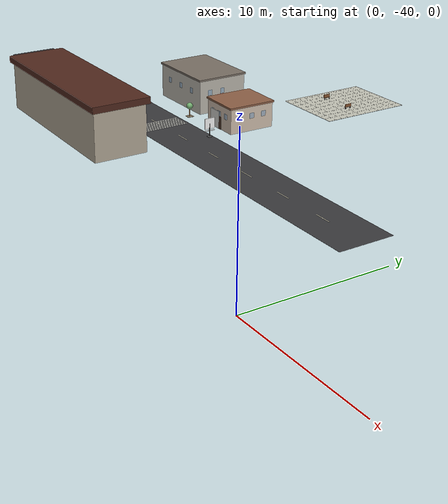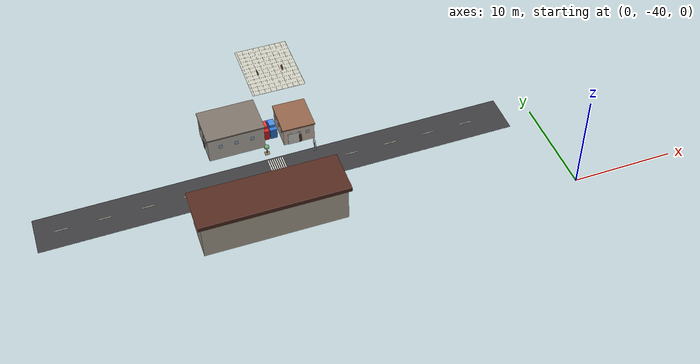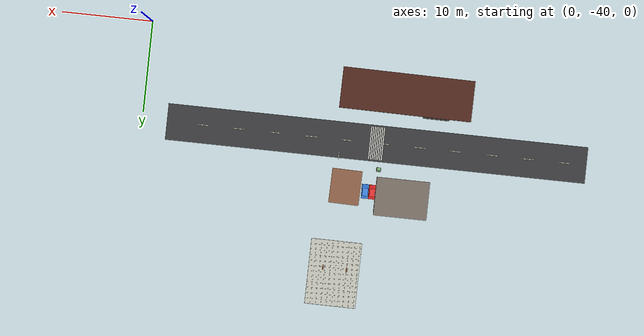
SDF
<sdf version="1.10">
 <world name="city">
  <model name="central_plaza">
   <static>true</static>
   <pose>-22.6455993652344 -14.5340393066406 0 0 0 1.56522998544021</pose>
   <link name="link">
    <collision name="plaza_col">
     <pose>0 0 0.008 0 0 0</pose>
     <geometry><box><size>7.2 5.6 0.016</size></box></geometry>
    </collision>
    <visual name="plaza_vis">
     <pose>0 0 0.008 0 0 0</pose>
     <geometry><box><size>7.2 5.6 0.016</size></box></geometry>
     <material>
      <ambient>0.779999971 0.779999971 0.730000019 1</ambient>
      <diffuse>0.779999971 0.779999971 0.730000019 1</diffuse>
      <specular>0.0799999982 0.0799999982 0.0799999982 1</specular>
     </material>
    </visual>
    <visual name="gx0">
     <pose>-3.6 0 0.0164 0 0 0</pose>
     <geometry><box><size>0.016 5.6 0.002</size></box></geometry>
     <material>
      <ambient>0.639999986 0.639999986 0.600000024 1</ambient>
      <diffuse>0.639999986 0.639999986 0.600000024 1</diffuse>
      <specular>0.0799999982 0.0799999982 0.0799999982 1</specular>
     </material>
    </visual>
    <visual name="gx1">
     <pose>-3 0 0.0164 0 0 0</pose>
     <geometry><box><size>0.016 5.6 0.002</size></box></geometry>
     <material>
      <ambient>0.639999986 0.639999986 0.600000024 1</ambient>
      <diffuse>0.639999986 0.639999986 0.600000024 1</diffuse>
      <specular>0.0799999982 0.0799999982 0.0799999982 1</specular>
     </material>
    </visual>
    <visual name="gx2">
     <pose>-2.4 0 0.0164 0 0 0</pose>
     <geometry><box><size>0.016 5.6 0.002</size></box></geometry>
     <material>
      <ambient>0.639999986 0.639999986 0.600000024 1</ambient>
      <diffuse>0.639999986 0.639999986 0.600000024 1</diffuse>
      <specular>0.0799999982 0.0799999982 0.0799999982 1</specular>
     </material>
    </visual>
    <visual name="gx3">
     <pose>-1.8 0 0.0164 0 0 0</pose>
     <geometry><box><size>0.016 5.6 0.002</size></box></geometry>
     <material>
      <ambient>0.639999986 0.639999986 0.600000024 1</ambient>
      <diffuse>0.639999986 0.639999986 0.600000024 1</diffuse>
      <specular>0.0799999982 0.0799999982 0.0799999982 1</specular>
     </material>
    </visual>
    <visual name="gx4">
     <pose>-1.2 0 0.0164 0 0 0</pose>
     <geometry><box><size>0.016 5.6 0.002</size></box></geometry>
     <material>
      <ambient>0.639999986 0.639999986 0.600000024 1</ambient>
      <diffuse>0.639999986 0.639999986 0.600000024 1</diffuse>
      <specular>0.0799999982 0.0799999982 0.0799999982 1</specular>
     </material>
    </visual>
    <visual name="gx5">
     <pose>-0.6 0 0.0164 0 0 0</pose>
     <geometry><box><size>0.016 5.6 0.002</size></box></geometry>
     <material>
      <ambient>0.639999986 0.639999986 0.600000024 1</ambient>
      <diffuse>0.639999986 0.639999986 0.600000024 1</diffuse>
      <specular>0.0799999982 0.0799999982 0.0799999982 1</specular>
     </material>
    </visual>
    <visual name="gx6">
     <pose>0 0 0.0164 0 0 0</pose>
     <geometry><box><size>0.016 5.6 0.002</size></box></geometry>
     <material>
      <ambient>0.639999986 0.639999986 0.600000024 1</ambient>
      <diffuse>0.639999986 0.639999986 0.600000024 1</diffuse>
      <specular>0.0799999982 0.0799999982 0.0799999982 1</specular>
     </material>
    </visual>
    <visual name="gx7">
     <pose>0.6 0 0.0164 0 0 0</pose>
     <geometry><box><size>0.016 5.6 0.002</size></box></geometry>
     <material>
      <ambient>0.639999986 0.639999986 0.600000024 1</ambient>
      <diffuse>0.639999986 0.639999986 0.600000024 1</diffuse>
      <specular>0.0799999982 0.0799999982 0.0799999982 1</specular>
     </material>
    </visual>
    <visual name="gx8">
     <pose>1.2 0 0.0164 0 0 0</pose>
     <geometry><box><size>0.016 5.6 0.002</size></box></geometry>
     <material>
      <ambient>0.639999986 0.639999986 0.600000024 1</ambient>
      <diffuse>0.639999986 0.639999986 0.600000024 1</diffuse>
      <specular>0.0799999982 0.0799999982 0.0799999982 1</specular>
     </material>
    </visual>
    <visual name="gx9">
     <pose>1.8 0 0.0164 0 0 0</pose>
     <geometry><box><size>0.016 5.6 0.002</size></box></geometry>
     <material>
      <ambient>0.639999986 0.639999986 0.600000024 1</ambient>
      <diffuse>0.639999986 0.639999986 0.600000024 1</diffuse>
      <specular>0.0799999982 0.0799999982 0.0799999982 1</specular>
     </material>
    </visual>
    <visual name="gx10">
     <pose>2.4 0 0.0164 0 0 0</pose>
     <geometry><box><size>0.016 5.6 0.002</size></box></geometry>
     <material>
      <ambient>0.639999986 0.639999986 0.600000024 1</ambient>
      <diffuse>0.639999986 0.639999986 0.600000024 1</diffuse>
      <specular>0.0799999982 0.0799999982 0.0799999982 1</specular>
     </material>
    </visual>
    <visual name="gx11">
     <pose>3 0 0.0164 0 0 0</pose>
     <geometry><box><size>0.016 5.6 0.002</size></box></geometry>
     <material>
      <ambient>0.639999986 0.639999986 0.600000024 1</ambient>
      <diffuse>0.639999986 0.639999986 0.600000024 1</diffuse>
      <specular>0.0799999982 0.0799999982 0.0799999982 1</specular>
     </material>
    </visual>
    <visual name="gx12">
     <pose>3.6 0 0.0164 0 0 0</pose>
     <geometry><box><size>0.016 5.6 0.002</size></box></geometry>
     <material>
      <ambient>0.639999986 0.639999986 0.600000024 1</ambient>
      <diffuse>0.639999986 0.639999986 0.600000024 1</diffuse>
      <specular>0.0799999982 0.0799999982 0.0799999982 1</specular>
     </material>
    </visual>
    <visual name="gy0">
     <pose>0 -2.8 0.0164 0 0 0</pose>
     <geometry><box><size>7.2 0.016 0.002</size></box></geometry>
     <material>
      <ambient>0.639999986 0.639999986 0.600000024 1</ambient>
      <diffuse>0.639999986 0.639999986 0.600000024 1</diffuse>
      <specular>0.0799999982 0.0799999982 0.0799999982 1</specular>
     </material>
    </visual>
    <visual name="gy1">
     <pose>0 -2.2 0.0164 0 0 0</pose>
     <geometry><box><size>7.2 0.016 0.002</size></box></geometry>
     <material>
      <ambient>0.639999986 0.639999986 0.600000024 1</ambient>
      <diffuse>0.639999986 0.639999986 0.600000024 1</diffuse>
      <specular>0.0799999982 0.0799999982 0.0799999982 1</specular>
     </material>
    </visual>
    <visual name="gy2">
     <pose>0 -1.6 0.0164 0 0 0</pose>
     <geometry><box><size>7.2 0.016 0.002</size></box></geometry>
     <material>
      <ambient>0.639999986 0.639999986 0.600000024 1</ambient>
      <diffuse>0.639999986 0.639999986 0.600000024 1</diffuse>
      <specular>0.0799999982 0.0799999982 0.0799999982 1</specular>
     </material>
    </visual>
    <visual name="gy3">
     <pose>0 -1 0.0164 0 0 0</pose>
     <geometry><box><size>7.2 0.016 0.002</size></box></geometry>
     <material>
      <ambient>0.639999986 0.639999986 0.600000024 1</ambient>
      <diffuse>0.639999986 0.639999986 0.600000024 1</diffuse>
      <specular>0.0799999982 0.0799999982 0.0799999982 1</specular>
     </material>
    </visual>
    <visual name="gy4">
     <pose>0 -0.4 0.0164 0 0 0</pose>
     <geometry><box><size>7.2 0.016 0.002</size></box></geometry>
     <material>
      <ambient>0.639999986 0.639999986 0.600000024 1</ambient>
      <diffuse>0.639999986 0.639999986 0.600000024 1</diffuse>
      <specular>0.0799999982 0.0799999982 0.0799999982 1</specular>
     </material>
    </visual>
    <visual name="gy5">
     <pose>0 0.2 0.0164 0 0 0</pose>
     <geometry><box><size>7.2 0.016 0.002</size></box></geometry>
     <material>
      <ambient>0.639999986 0.639999986 0.600000024 1</ambient>
      <diffuse>0.639999986 0.639999986 0.600000024 1</diffuse>
      <specular>0.0799999982 0.0799999982 0.0799999982 1</specular>
     </material>
    </visual>
    <visual name="gy6">
     <pose>0 0.8 0.0164 0 0 0</pose>
     <geometry><box><size>7.2 0.016 0.002</size></box></geometry>
     <material>
      <ambient>0.639999986 0.639999986 0.600000024 1</ambient>
      <diffuse>0.639999986 0.639999986 0.600000024 1</diffuse>
      <specular>0.0799999982 0.0799999982 0.0799999982 1</specular>
     </material>
    </visual>
    <visual name="gy7">
     <pose>0 1.4 0.0164 0 0 0</pose>
     <geometry><box><size>7.2 0.016 0.002</size></box></geometry>
     <material>
      <ambient>0.639999986 0.639999986 0.600000024 1</ambient>
      <diffuse>0.639999986 0.639999986 0.600000024 1</diffuse>
      <specular>0.0799999982 0.0799999982 0.0799999982 1</specular>
     </material>
    </visual>
    <visual name="gy8">
     <pose>0 2 0.0164 0 0 0</pose>
     <geometry><box><size>7.2 0.016 0.002</size></box></geometry>
     <material>
      <ambient>0.639999986 0.639999986 0.600000024 1</ambient>
      <diffuse>0.639999986 0.639999986 0.600000024 1</diffuse>
      <specular>0.0799999982 0.0799999982 0.0799999982 1</specular>
     </material>
    </visual>
    <visual name="gy9">
     <pose>0 2.6 0.0164 0 0 0</pose>
     <geometry><box><size>7.2 0.016 0.002</size></box></geometry>
     <material>
      <ambient>0.639999986 0.639999986 0.600000024 1</ambient>
      <diffuse>0.639999986 0.639999986 0.600000024 1</diffuse>
      <specular>0.0799999982 0.0799999982 0.0799999982 1</specular>
     </material>
    </visual>
    <inertial>
     <mass>1</mass>
     <inertia><ixx>1</ixx><ixy>0</ixy><ixz>0</ixz><iyy>1</iyy><iyz>0</iyz><izz>1</izz></inertia>
    </inertial>
   </link>
  </model>
  <model name="house_4">
   <static>true</static>
   <pose>-22.9435424804688 -24.16484375 0 0 0 1.55046998478531</pose>
   <link name="link">
    <collision name="body_col">
     <pose>0 0 0.94 0 0 0</pose>
     <geometry><box><size>3.6 3.12 1.88</size></box></geometry>
    </collision>
    <visual name="body_vis">
     <pose>0 0 0.94 0 0 0</pose>
     <geometry><box><size>3.6 3.12 1.88</size></box></geometry>
     <material>
      <ambient>0.839999974 0.769999981 0.699999988 1</ambient>
      <diffuse>0.839999974 0.769999981 0.699999988 1</diffuse>
      <specular>0.0799999982 0.0799999982 0.0799999982 1</specular>
     </material>
    </visual>
    <collision name="roof_col">
     <pose>0 0 1.95 0 0 0</pose>
     <geometry><box><size>3.76 3.28 0.14</size></box></geometry>
    </collision>
    <visual name="roof_vis">
     <pose>0 0 1.95 0 0 0</pose>
     <geometry><box><size>3.76 3.28 0.14</size></box></geometry>
     <material>
      <ambient>0.560000002 0.379999995 0.280000001 1</ambient>
      <diffuse>0.560000002 0.379999995 0.280000001 1</diffuse>
      <specular>0.0799999982 0.0799999982 0.0799999982 1</specular>
     </material>
    </visual>
    <visual name="door_vis">
     <pose>-1.816 0 0.48 0 0 0</pose>
     <geometry><box><size>0.04 0.52 0.96</size></box></geometry>
     <material>
      <ambient>0.319999993 0.219999999 0.159999996 1</ambient>
      <diffuse>0.319999993 0.219999999 0.159999996 1</diffuse>
      <specular>0.0799999982 0.0799999982 0.0799999982 1</specular>
     </material>
    </visual>
    <visual name="win_west_0">
     <pose>-1.812 -0.8736 1.1656 0 0 0</pose>
     <geometry><box><size>0.032 0.34 0.4</size></box></geometry>
     <material>
      <ambient>0.550000012 0.720000029 0.879999995 0.550000012</ambient>
      <diffuse>0.550000012 0.720000029 0.879999995 0.550000012</diffuse>
      <specular>0.0799999982 0.0799999982 0.0799999982 1</specular>
      <transparency>0.35</transparency>
     </material>
    </visual>
    <visual name="win_west_1">
     <pose>-1.812 0 1.1656 0 0 0</pose>
     <geometry><box><size>0.032 0.34 0.4</size></box></geometry>
     <material>
      <ambient>0.550000012 0.720000029 0.879999995 0.550000012</ambient>
      <diffuse>0.550000012 0.720000029 0.879999995 0.550000012</diffuse>
      <specular>0.0799999982 0.0799999982 0.0799999982 1</specular>
      <transparency>0.35</transparency>
     </material>
    </visual>
    <visual name="win_west_2">
     <pose>-1.812 0.8736 1.1656 0 0 0</pose>
     <geometry><box><size>0.032 0.34 0.4</size></box></geometry>
     <material>
      <ambient>0.550000012 0.720000029 0.879999995 0.550000012</ambient>
      <diffuse>0.550000012 0.720000029 0.879999995 0.550000012</diffuse>
      <specular>0.0799999982 0.0799999982 0.0799999982 1</specular>
      <transparency>0.35</transparency>
     </material>
    </visual>
    <visual name="win_south_0">
     <pose>-1.008 -1.572 1.1656 0 0 0</pose>
     <geometry><box><size>0.34 0.032 0.4</size></box></geometry>
     <material>
      <ambient>0.550000012 0.720000029 0.879999995 0.550000012</ambient>
      <diffuse>0.550000012 0.720000029 0.879999995 0.550000012</diffuse>
      <specular>0.0799999982 0.0799999982 0.0799999982 1</specular>
      <transparency>0.35</transparency>
     </material>
    </visual>
    <visual name="win_south_1">
     <pose>0 -1.572 1.1656 0 0 0</pose>
     <geometry><box><size>0.34 0.032 0.4</size></box></geometry>
     <material>
      <ambient>0.550000012 0.720000029 0.879999995 0.550000012</ambient>
      <diffuse>0.550000012 0.720000029 0.879999995 0.550000012</diffuse>
      <specular>0.0799999982 0.0799999982 0.0799999982 1</specular>
      <transparency>0.35</transparency>
     </material>
    </visual>
    <visual name="win_south_2">
     <pose>1.008 -1.572 1.1656 0 0 0</pose>
     <geometry><box><size>0.34 0.032 0.4</size></box></geometry>
     <material>
      <ambient>0.550000012 0.720000029 0.879999995 0.550000012</ambient>
      <diffuse>0.550000012 0.720000029 0.879999995 0.550000012</diffuse>
      <specular>0.0799999982 0.0799999982 0.0799999982 1</specular>
      <transparency>0.35</transparency>
     </material>
    </visual>
    <visual name="win_east_0">
     <pose>1.812 -0.8736 1.1656 0 0 0</pose>
     <geometry><box><size>0.032 0.34 0.4</size></box></geometry>
     <material>
      <ambient>0.550000012 0.720000029 0.879999995 0.550000012</ambient>
      <diffuse>0.550000012 0.720000029 0.879999995 0.550000012</diffuse>
      <specular>0.0799999982 0.0799999982 0.0799999982 1</specular>
      <transparency>0.35</transparency>
     </material>
    </visual>
    <visual name="win_east_1">
     <pose>1.812 0 1.1656 0 0 0</pose>
     <geometry><box><size>0.032 0.34 0.4</size></box></geometry>
     <material>
      <ambient>0.550000012 0.720000029 0.879999995 0.550000012</ambient>
      <diffuse>0.550000012 0.720000029 0.879999995 0.550000012</diffuse>
      <specular>0.0799999982 0.0799999982 0.0799999982 1</specular>
      <transparency>0.35</transparency>
     </material>
    </visual>
    <visual name="win_north_0">
     <pose>-1.008 1.572 1.1656 0 0 0</pose>
     <geometry><box><size>0.34 0.032 0.4</size></box></geometry>
     <material>
      <ambient>0.550000012 0.720000029 0.879999995 0.550000012</ambient>
      <diffuse>0.550000012 0.720000029 0.879999995 0.550000012</diffuse>
      <specular>0.0799999982 0.0799999982 0.0799999982 1</specular>
      <transparency>0.35</transparency>
     </material>
    </visual>
    <visual name="win_north_1">
     <pose>0 1.572 1.1656 0 0 0</pose>
     <geometry><box><size>0.34 0.032 0.4</size></box></geometry>
     <material>
      <ambient>0.550000012 0.720000029 0.879999995 0.550000012</ambient>
      <diffuse>0.550000012 0.720000029 0.879999995 0.550000012</diffuse>
      <specular>0.0799999982 0.0799999982 0.0799999982 1</specular>
      <transparency>0.35</transparency>
     </material>
    </visual>
    <visual name="win_north_2">
     <pose>1.008 1.572 1.1656 0 0 0</pose>
     <geometry><box><size>0.34 0.032 0.4</size></box></geometry>
     <material>
      <ambient>0.550000012 0.720000029 0.879999995 0.550000012</ambient>
      <diffuse>0.550000012 0.720000029 0.879999995 0.550000012</diffuse>
      <specular>0.0799999982 0.0799999982 0.0799999982 1</specular>
      <transparency>0.35</transparency>
     </material>
    </visual>
    <visual name="garage">
     <pose>-1.824 0.5616 0.66 0 0 0</pose>
     <geometry><box><size>0.048 1.12 1.32</size></box></geometry>
     <material>
      <ambient>0.860000014 0.860000014 0.839999974 1</ambient>
      <diffuse>0.860000014 0.860000014 0.839999974 1</diffuse>
      <specular>0.0799999982 0.0799999982 0.0799999982 1</specular>
     </material>
    </visual>
    <inertial>
     <mass>1</mass>
     <inertia><ixx>1</ixx><ixy>0</ixy><ixz>0</ixz><iyy>1</iyy><iyz>0</iyz><izz>1</izz></inertia>
    </inertial>
   </link>
  </model>
  <model name="tree_2">
   <static>true</static>
   <pose>-26.4 -26.4 0 0 0 0</pose>
   <link name="link">
    <collision name="soil_col">
     <pose>0 0 0.012 0 0 0</pose>
     <geometry><box><size>0.48 0.48 0.024</size></box></geometry>
    </collision>
    <visual name="soil_vis">
     <pose>0 0 0.012 0 0 0</pose>
     <geometry><box><size>0.48 0.48 0.024</size></box></geometry>
     <material>
      <ambient>0.5 0.439999998 0.349999994 1</ambient>
      <diffuse>0.5 0.439999998 0.349999994 1</diffuse>
      <specular>0.0799999982 0.0799999982 0.0799999982 1</specular>
     </material>
    </visual>
    <collision name="trunk_col">
     <pose>0 0 0.36 0 0 0</pose>
     <geometry><cylinder><radius>0.04</radius><length>0.72</length></cylinder></geometry>
    </collision>
    <visual name="trunk_vis">
     <pose>0 0 0.36 0 0 0</pose>
     <geometry><cylinder><radius>0.04</radius><length>0.72</length></cylinder></geometry>
     <material>
      <ambient>0.449999988 0.310000002 0.180000007 1</ambient>
      <diffuse>0.449999988 0.310000002 0.180000007 1</diffuse>
      <specular>0.0799999982 0.0799999982 0.0799999982 1</specular>
     </material>
    </visual>
    <visual name="crown_vis">
     <pose>0 0 0.84 0 0 0</pose>
     <geometry><sphere><radius>0.248</radius></sphere></geometry>
     <material>
      <ambient>0.449999988 0.680000007 0.439999998 1</ambient>
      <diffuse>0.449999988 0.680000007 0.439999998 1</diffuse>
      <specular>0.0799999982 0.0799999982 0.0799999982 1</specular>
     </material>
    </visual>
    <inertial>
     <mass>1</mass>
     <inertia><ixx>1</ixx><ixy>0</ixy><ixz>0</ixz><iyy>1</iyy><iyz>0</iyz><izz>1</izz></inertia>
    </inertial>
   </link>
  </model>
  <model name="bench_1">
   <static>true</static>
   <pose>-24.0544708251953 -15.0435668945313 0 0 0 -1.57385998235563</pose>
   <link name="link">
    <visual name="seat">
     <pose>0 0 0.18 0 0 0</pose>
     <geometry><box><size>0.56 0.14 0.032</size></box></geometry>
     <material>
      <ambient>0.550000012 0.349999994 0.200000003 1</ambient>
      <diffuse>0.550000012 0.349999994 0.200000003 1</diffuse>
      <specular>0.0799999982 0.0799999982 0.0799999982 1</specular>
     </material>
    </visual>
    <visual name="back">
     <pose>0 -0.048 0.3 0 0 0</pose>
     <geometry><box><size>0.56 0.032 0.22</size></box></geometry>
     <material>
      <ambient>0.550000012 0.349999994 0.200000003 1</ambient>
      <diffuse>0.550000012 0.349999994 0.200000003 1</diffuse>
      <specular>0.0799999982 0.0799999982 0.0799999982 1</specular>
     </material>
    </visual>
    <visual name="leg1">
     <pose>-0.22 0 0.088 0 0 0</pose>
     <geometry><box><size>0.032 0.112 0.176</size></box></geometry>
     <material>
      <ambient>0.180000007 0.180000007 0.180000007 1</ambient>
      <diffuse>0.180000007 0.180000007 0.180000007 1</diffuse>
      <specular>0.0799999982 0.0799999982 0.0799999982 1</specular>
     </material>
    </visual>
    <visual name="leg2">
     <pose>0.22 0 0.088 0 0 0</pose>
     <geometry><box><size>0.032 0.112 0.176</size></box></geometry>
     <material>
      <ambient>0.180000007 0.180000007 0.180000007 1</ambient>
      <diffuse>0.180000007 0.180000007 0.180000007 1</diffuse>
      <specular>0.0799999982 0.0799999982 0.0799999982 1</specular>
     </material>
    </visual>
    <inertial>
     <mass>1</mass>
     <inertia><ixx>1</ixx><ixy>0</ixy><ixz>0</ixz><iyy>1</iyy><iyz>0</iyz><izz>1</izz></inertia>
    </inertial>
   </link>
  </model>
  <model name="bench_2">
   <static>true</static>
   <pose>-21.4449645996094 -15.087646484375 0 0 0 1.57080003571763</pose>
   <link name="link">
    <visual name="seat">
     <pose>0 0 0.18 0 0 0</pose>
     <geometry><box><size>0.56 0.14 0.032</size></box></geometry>
     <material>
      <ambient>0.550000012 0.349999994 0.200000003 1</ambient>
      <diffuse>0.550000012 0.349999994 0.200000003 1</diffuse>
      <specular>0.0799999982 0.0799999982 0.0799999982 1</specular>
     </material>
    </visual>
    <visual name="back">
     <pose>0 -0.048 0.3 0 0 0</pose>
     <geometry><box><size>0.56 0.032 0.22</size></box></geometry>
     <material>
      <ambient>0.550000012 0.349999994 0.200000003 1</ambient>
      <diffuse>0.550000012 0.349999994 0.200000003 1</diffuse>
      <specular>0.0799999982 0.0799999982 0.0799999982 1</specular>
     </material>
    </visual>
    <visual name="leg1">
     <pose>-0.22 0 0.088 0 0 0</pose>
     <geometry><box><size>0.032 0.112 0.176</size></box></geometry>
     <material>
      <ambient>0.180000007 0.180000007 0.180000007 1</ambient>
      <diffuse>0.180000007 0.180000007 0.180000007 1</diffuse>
      <specular>0.0799999982 0.0799999982 0.0799999982 1</specular>
     </material>
    </visual>
    <visual name="leg2">
     <pose>0.22 0 0.088 0 0 0</pose>
     <geometry><box><size>0.032 0.112 0.176</size></box></geometry>
     <material>
      <ambient>0.180000007 0.180000007 0.180000007 1</ambient>
      <diffuse>0.180000007 0.180000007 0.180000007 1</diffuse>
      <specular>0.0799999982 0.0799999982 0.0799999982 1</specular>
     </material>
    </visual>
    <inertial>
     <mass>1</mass>
     <inertia><ixx>1</ixx><ixy>0</ixy><ixz>0</ixz><iyy>1</iyy><iyz>0</iyz><izz>1</izz></inertia>
    </inertial>
   </link>
  </model>
  <model name="house_4_qr_sign">
   <static>true</static>
   <pose>-21.9045928955078 -27.5053924560547 0 0 0 -1.59809998817345</pose>
   <link name="link">
    <collision name="post_col">
     <pose>0 0 0.5 0 0 0</pose>
     <geometry><box><size>0.056 0.056 1</size></box></geometry>
    </collision>
    <visual name="post_vis">
     <pose>0 0 0.5 0 0 0</pose>
     <geometry><box><size>0.056 0.056 1</size></box></geometry>
     <material>
      <ambient>0.239999995 0.239999995 0.239999995 1</ambient>
      <diffuse>0.239999995 0.239999995 0.239999995 1</diffuse>
      <specular>0.0799999982 0.0799999982 0.0799999982 1</specular>
     </material>
    </visual>
    <collision name="base_col">
     <pose>0 0 0.024 0 0 0</pose>
     <geometry><box><size>0.3 0.3 0.048</size></box></geometry>
    </collision>
    <visual name="base_vis">
     <pose>0 0 0.024 0 0 0</pose>
     <geometry><box><size>0.3 0.3 0.048</size></box></geometry>
     <material>
      <ambient>0.379999995 0.379999995 0.379999995 1</ambient>
      <diffuse>0.379999995 0.379999995 0.379999995 1</diffuse>
      <specular>0.0799999982 0.0799999982 0.0799999982 1</specular>
     </material>
    </visual>
    <visual name="back_vis">
     <pose>0 0 0.48 0 0 0</pose>
     <geometry><box><size>0.86 0.024 0.072</size></box></geometry>
     <material>
      <ambient>0.920000017 0.920000017 0.920000017 1</ambient>
      <diffuse>0.920000017 0.920000017 0.920000017 1</diffuse>
      <specular>0.0500000007 0.0500000007 0.0500000007 1</specular>
     </material>
    </visual>
    <visual name="qr_vis">
     <pose>0 0 1.02 0 0 0</pose>
     <geometry><box><size>0.8 0.04 0.8</size></box></geometry>
     <material>
      <ambient>1 1 1 1</ambient>
      <diffuse>1 1 1 1</diffuse>
      <specular>0.0500000007 0.0500000007 0.0500000007 1</specular>
      <pbr><metal><metalness>0.0</metalness><roughness>1.0</roughness></metal></pbr>
     </material>
    </visual>
    <inertial>
     <mass>1</mass>
     <inertia><ixx>1</ixx><ixy>0</ixy><ixz>0</ixz><iyy>1</iyy><iyz>0</iyz><izz>1</izz></inertia>
    </inertial>
   </link>
  </model>
  <model name="warehouse_east_1">
   <static>true</static>
   <pose>-29.1020486767562 -23.5312824687326 0 0 0 0</pose>
   <link name="link">
    <collision name="body_col">
     <pose>0 0 1.3 0 0 0</pose>
     <geometry><box><size>5.6 4 2.6</size></box></geometry>
    </collision>
    <visual name="body_vis">
     <pose>0 0 1.3 0 0 0</pose>
     <geometry><box><size>5.6 4 2.6</size></box></geometry>
     <material>
      <ambient>0.75999999 0.74000001 0.699999988 1</ambient>
      <diffuse>0.75999999 0.74000001 0.699999988 1</diffuse>
      <specular>0.0799999982 0.0799999982 0.0799999982 1</specular>
     </material>
    </visual>
    <collision name="roof_col">
     <pose>0 0 2.67 0 0 0</pose>
     <geometry><box><size>5.76 4.16 0.14</size></box></geometry>
    </collision>
    <visual name="roof_vis">
     <pose>0 0 2.67 0 0 0</pose>
     <geometry><box><size>5.76 4.16 0.14</size></box></geometry>
     <material>
      <ambient>0.479999989 0.439999998 0.400000006 1</ambient>
      <diffuse>0.479999989 0.439999998 0.400000006 1</diffuse>
      <specular>0.0799999982 0.0799999982 0.0799999982 1</specular>
     </material>
    </visual>
    <visual name="door_vis">
     <pose>-2.816 0 0.48 0 0 0</pose>
     <geometry><box><size>0.04 0.52 0.96</size></box></geometry>
     <material>
      <ambient>0.319999993 0.219999999 0.159999996 1</ambient>
      <diffuse>0.319999993 0.219999999 0.159999996 1</diffuse>
      <specular>0.0799999982 0.0799999982 0.0799999982 1</specular>
     </material>
    </visual>
    <visual name="win_west_0">
     <pose>-2.812 -1.12 1.612 0 0 0</pose>
     <geometry><box><size>0.032 0.34 0.4</size></box></geometry>
     <material>
      <ambient>0.550000012 0.720000029 0.879999995 0.550000012</ambient>
      <diffuse>0.550000012 0.720000029 0.879999995 0.550000012</diffuse>
      <specular>0.0799999982 0.0799999982 0.0799999982 1</specular>
      <transparency>0.35</transparency>
     </material>
    </visual>
    <visual name="win_west_1">
     <pose>-2.812 0 1.612 0 0 0</pose>
     <geometry><box><size>0.032 0.34 0.4</size></box></geometry>
     <material>
      <ambient>0.550000012 0.720000029 0.879999995 0.550000012</ambient>
      <diffuse>0.550000012 0.720000029 0.879999995 0.550000012</diffuse>
      <specular>0.0799999982 0.0799999982 0.0799999982 1</specular>
      <transparency>0.35</transparency>
     </material>
    </visual>
    <visual name="win_west_2">
     <pose>-2.812 1.12 1.612 0 0 0</pose>
     <geometry><box><size>0.032 0.34 0.4</size></box></geometry>
     <material>
      <ambient>0.550000012 0.720000029 0.879999995 0.550000012</ambient>
      <diffuse>0.550000012 0.720000029 0.879999995 0.550000012</diffuse>
      <specular>0.0799999982 0.0799999982 0.0799999982 1</specular>
      <transparency>0.35</transparency>
     </material>
    </visual>
    <visual name="win_south_0">
     <pose>-1.568 -2.012 1.612 0 0 0</pose>
     <geometry><box><size>0.34 0.032 0.4</size></box></geometry>
     <material>
      <ambient>0.550000012 0.720000029 0.879999995 0.550000012</ambient>
      <diffuse>0.550000012 0.720000029 0.879999995 0.550000012</diffuse>
      <specular>0.0799999982 0.0799999982 0.0799999982 1</specular>
      <transparency>0.35</transparency>
     </material>
    </visual>
    <visual name="win_south_1">
     <pose>0 -2.012 1.612 0 0 0</pose>
     <geometry><box><size>0.34 0.032 0.4</size></box></geometry>
     <material>
      <ambient>0.550000012 0.720000029 0.879999995 0.550000012</ambient>
      <diffuse>0.550000012 0.720000029 0.879999995 0.550000012</diffuse>
      <specular>0.0799999982 0.0799999982 0.0799999982 1</specular>
      <transparency>0.35</transparency>
     </material>
    </visual>
    <visual name="win_south_2">
     <pose>1.568 -2.012 1.612 0 0 0</pose>
     <geometry><box><size>0.34 0.032 0.4</size></box></geometry>
     <material>
      <ambient>0.550000012 0.720000029 0.879999995 0.550000012</ambient>
      <diffuse>0.550000012 0.720000029 0.879999995 0.550000012</diffuse>
      <specular>0.0799999982 0.0799999982 0.0799999982 1</specular>
      <transparency>0.35</transparency>
     </material>
    </visual>
    <visual name="win_east_0">
     <pose>2.812 -1.12 1.612 0 0 0</pose>
     <geometry><box><size>0.032 0.34 0.4</size></box></geometry>
     <material>
      <ambient>0.550000012 0.720000029 0.879999995 0.550000012</ambient>
      <diffuse>0.550000012 0.720000029 0.879999995 0.550000012</diffuse>
      <specular>0.0799999982 0.0799999982 0.0799999982 1</specular>
      <transparency>0.35</transparency>
     </material>
    </visual>
    <visual name="win_east_1">
     <pose>2.812 0 1.612 0 0 0</pose>
     <geometry><box><size>0.032 0.34 0.4</size></box></geometry>
     <material>
      <ambient>0.550000012 0.720000029 0.879999995 0.550000012</ambient>
      <diffuse>0.550000012 0.720000029 0.879999995 0.550000012</diffuse>
      <specular>0.0799999982 0.0799999982 0.0799999982 1</specular>
      <transparency>0.35</transparency>
     </material>
    </visual>
    <visual name="win_north_0">
     <pose>-1.568 2.012 1.612 0 0 0</pose>
     <geometry><box><size>0.34 0.032 0.4</size></box></geometry>
     <material>
      <ambient>0.550000012 0.720000029 0.879999995 0.550000012</ambient>
      <diffuse>0.550000012 0.720000029 0.879999995 0.550000012</diffuse>
      <specular>0.0799999982 0.0799999982 0.0799999982 1</specular>
      <transparency>0.35</transparency>
     </material>
    </visual>
    <visual name="win_north_1">
     <pose>0 2.012 1.612 0 0 0</pose>
     <geometry><box><size>0.34 0.032 0.4</size></box></geometry>
     <material>
      <ambient>0.550000012 0.720000029 0.879999995 0.550000012</ambient>
      <diffuse>0.550000012 0.720000029 0.879999995 0.550000012</diffuse>
      <specular>0.0799999982 0.0799999982 0.0799999982 1</specular>
      <transparency>0.35</transparency>
     </material>
    </visual>
    <visual name="win_north_2">
     <pose>1.568 2.012 1.612 0 0 0</pose>
     <geometry><box><size>0.34 0.032 0.4</size></box></geometry>
     <material>
      <ambient>0.550000012 0.720000029 0.879999995 0.550000012</ambient>
      <diffuse>0.550000012 0.720000029 0.879999995 0.550000012</diffuse>
      <specular>0.0799999982 0.0799999982 0.0799999982 1</specular>
      <transparency>0.35</transparency>
     </material>
    </visual>
    <inertial>
     <mass>1</mass>
     <inertia><ixx>1</ixx><ixy>0</ixy><ixz>0</ixz><iyy>1</iyy><iyz>0</iyz><izz>1</izz></inertia>
    </inertial>
   </link>
  </model>
  <model name="gallery_long_residential_block">
   <static>true</static>
   <pose>-28.4608795166016 -34.7549591064453 0 0 0 -0.00839913500363595</pose>
   <link name="body">
    <collision name="collision">
     <pose>0 0 1.8 0 0 0</pose>
     <geometry><box><size>13.6 4 3.6</size></box></geometry>
    </collision>
    <visual name="main">
     <pose>0 0 1.8 0 0 0</pose>
     <geometry><box><size>13.6 4 3.6</size></box></geometry>
     <material>
      <ambient>0.720000029 0.680000007 0.610000014 1</ambient>
      <diffuse>0.720000029 0.680000007 0.610000014 1</diffuse>
      <specular>0.0799999982 0.0799999982 0.0799999982 1</specular>
     </material>
    </visual>
    <visual name="roof">
     <pose>0 0 3.84 0 0 0</pose>
     <geometry><box><size>14.2 4.4 0.48</size></box></geometry>
     <material>
      <ambient>0.319999993 0.159999996 0.119999997 1</ambient>
      <diffuse>0.319999993 0.159999996 0.119999997 1</diffuse>
      <specular>0.0500000007 0.0500000007 0.0500000007 1</specular>
     </material>
    </visual>
    <visual name="canopy">
     <pose>-3.6 2.12 1.16 0 0 0</pose>
     <geometry><box><size>2.8 0.28 0.44</size></box></geometry>
     <material>
      <ambient>0.239999995 0.219999999 0.200000003 1</ambient>
      <diffuse>0.239999995 0.219999999 0.200000003 1</diffuse>
      <specular>0.0299999993 0.0299999993 0.0299999993 1</specular>
     </material>
    </visual>
    <inertial>
     <mass>1</mass>
     <inertia><ixx>1</ixx><ixy>0</ixy><ixz>0</ixz><iyy>1</iyy><iyz>0</iyz><izz>1</izz></inertia>
    </inertial>
   </link>
  </model>
  <model name="car_8_2">
   <static>true</static>
   <pose>-25.9244629251 -23.873397889 0 0 0 1.57080003572</pose>
   <link name="link">
    <collision name="body_col">
     <pose>0 0 0.55125 0 0 0</pose>
     <geometry><box><size>1.56 0.7 1.1025</size></box></geometry>
    </collision>
    <collision name="cab_col">
     <pose>0.06 0 0.866 0 0 0</pose>
     <geometry><box><size>0.84 0.58 1.0395</size></box></geometry>
    </collision>
    <visual name="body_vis">
     <pose>0 0 0.55125 0 0 0</pose>
     <geometry><box><size>1.56 0.7 1.1025</size></box></geometry>
     <material>
      <ambient>0.829999983 0.119999997 0.119999997 1</ambient>
      <diffuse>0.829999983 0.119999997 0.119999997 1</diffuse>
      <specular>0.0799999982 0.0799999982 0.0799999982 1</specular>
     </material>
    </visual>
    <visual name="cab_vis">
     <pose>0.06 0 0.866 0 0 0</pose>
     <geometry><box><size>0.84 0.58 1.0395</size></box></geometry>
     <material>
      <ambient>0.910000026 0.200000003 0.200000003 1</ambient>
      <diffuse>0.910000026 0.200000003 0.200000003 1</diffuse>
      <specular>0.0799999982 0.0799999982 0.0799999982 1</specular>
     </material>
    </visual>
    <visual name="glass_vis">
     <pose>0.08 0 0.854 0 0 0</pose>
     <geometry><box><size>0.76 0.528 0.8505</size></box></geometry>
     <material>
      <ambient>0.550000012 0.720000029 0.879999995 0.550000012</ambient>
      <diffuse>0.550000012 0.720000029 0.879999995 0.550000012</diffuse>
      <specular>0.0799999982 0.0799999982 0.0799999982 1</specular>
      <transparency>0.35</transparency>
     </material>
    </visual>
    <visual name="wheel_-1.15_-0.82">
     <pose>-0.46 -0.328 0.11 1.5708 0 0</pose>
     <geometry><cylinder><radius>0.112</radius><length>0.072</length></cylinder></geometry>
     <material>
      <ambient>0.0799999982 0.0799999982 0.0799999982 1</ambient>
      <diffuse>0.0799999982 0.0799999982 0.0799999982 1</diffuse>
      <specular>0.0799999982 0.0799999982 0.0799999982 1</specular>
     </material>
    </visual>
    <visual name="wheel_-1.15_0.82">
     <pose>-0.46 0.328 0.11 1.5708 0 0</pose>
     <geometry><cylinder><radius>0.112</radius><length>0.072</length></cylinder></geometry>
     <material>
      <ambient>0.0799999982 0.0799999982 0.0799999982 1</ambient>
      <diffuse>0.0799999982 0.0799999982 0.0799999982 1</diffuse>
      <specular>0.0799999982 0.0799999982 0.0799999982 1</specular>
     </material>
    </visual>
    <visual name="wheel_1.15_-0.82">
     <pose>0.46 -0.328 0.11 1.5708 0 0</pose>
     <geometry><cylinder><radius>0.112</radius><length>0.072</length></cylinder></geometry>
     <material>
      <ambient>0.0799999982 0.0799999982 0.0799999982 1</ambient>
      <diffuse>0.0799999982 0.0799999982 0.0799999982 1</diffuse>
      <specular>0.0799999982 0.0799999982 0.0799999982 1</specular>
     </material>
    </visual>
    <visual name="wheel_1.15_0.82">
     <pose>0.46 0.328 0.11 1.5708 0 0</pose>
     <geometry><cylinder><radius>0.112</radius><length>0.072</length></cylinder></geometry>
     <material>
      <ambient>0.0799999982 0.0799999982 0.0799999982 1</ambient>
      <diffuse>0.0799999982 0.0799999982 0.0799999982 1</diffuse>
      <specular>0.0799999982 0.0799999982 0.0799999982 1</specular>
     </material>
    </visual>
    <inertial>
     <mass>1</mass>
     <inertia><ixx>1</ixx><ixy>0</ixy><ixz>0</ixz><iyy>1</iyy><iyz>0</iyz><izz>1</izz></inertia>
    </inertial>
   </link>
  </model>
  <model name="car_9_5">
   <static>true</static>
   <pose>-25.1508879912 -23.876173973 0 0 0 1.57080003572</pose>
   <link name="link">
    <collision name="body_col">
     <pose>0 0 0.55125 0 0 0</pose>
     <geometry><box><size>1.56 0.7 1.1025</size></box></geometry>
    </collision>
    <collision name="cab_col">
     <pose>0.06 0 0.866 0 0 0</pose>
     <geometry><box><size>0.84 0.58 1.0395</size></box></geometry>
    </collision>
    <visual name="body_vis">
     <pose>0 0 0.55125 0 0 0</pose>
     <geometry><box><size>1.56 0.7 1.1025</size></box></geometry>
     <material>
      <ambient>0.180000007 0.449999988 0.819999993 1</ambient>
      <diffuse>0.180000007 0.449999988 0.819999993 1</diffuse>
      <specular>0.0799999982 0.0799999982 0.0799999982 1</specular>
     </material>
    </visual>
    <visual name="cab_vis">
     <pose>0.06 0 0.866 0 0 0</pose>
     <geometry><box><size>0.84 0.58 1.0395</size></box></geometry>
     <material>
      <ambient>0.25999999 0.529999971 0.899999976 1</ambient>
      <diffuse>0.25999999 0.529999971 0.899999976 1</diffuse>
      <specular>0.0799999982 0.0799999982 0.0799999982 1</specular>
     </material>
    </visual>
    <visual name="glass_vis">
     <pose>0.08 0 0.854 0 0 0</pose>
     <geometry><box><size>0.76 0.528 0.8505</size></box></geometry>
     <material>
      <ambient>0.550000012 0.720000029 0.879999995 0.550000012</ambient>
      <diffuse>0.550000012 0.720000029 0.879999995 0.550000012</diffuse>
      <specular>0.0799999982 0.0799999982 0.0799999982 1</specular>
      <transparency>0.35</transparency>
     </material>
    </visual>
    <visual name="wheel_-1.15_-0.82">
     <pose>-0.46 -0.328 0.11 1.5708 0 0</pose>
     <geometry><cylinder><radius>0.112</radius><length>0.072</length></cylinder></geometry>
     <material>
      <ambient>0.0799999982 0.0799999982 0.0799999982 1</ambient>
      <diffuse>0.0799999982 0.0799999982 0.0799999982 1</diffuse>
      <specular>0.0799999982 0.0799999982 0.0799999982 1</specular>
     </material>
    </visual>
    <visual name="wheel_-1.15_0.82">
     <pose>-0.46 0.328 0.11 1.5708 0 0</pose>
     <geometry><cylinder><radius>0.112</radius><length>0.072</length></cylinder></geometry>
     <material>
      <ambient>0.0799999982 0.0799999982 0.0799999982 1</ambient>
      <diffuse>0.0799999982 0.0799999982 0.0799999982 1</diffuse>
      <specular>0.0799999982 0.0799999982 0.0799999982 1</specular>
     </material>
    </visual>
    <visual name="wheel_1.15_-0.82">
     <pose>0.46 -0.328 0.11 1.5708 0 0</pose>
     <geometry><cylinder><radius>0.112</radius><length>0.072</length></cylinder></geometry>
     <material>
      <ambient>0.0799999982 0.0799999982 0.0799999982 1</ambient>
      <diffuse>0.0799999982 0.0799999982 0.0799999982 1</diffuse>
      <specular>0.0799999982 0.0799999982 0.0799999982 1</specular>
     </material>
    </visual>
    <visual name="wheel_1.15_0.82">
     <pose>0.46 0.328 0.11 1.5708 0 0</pose>
     <geometry><cylinder><radius>0.112</radius><length>0.072</length></cylinder></geometry>
     <material>
      <ambient>0.0799999982 0.0799999982 0.0799999982 1</ambient>
      <diffuse>0.0799999982 0.0799999982 0.0799999982 1</diffuse>
      <specular>0.0799999982 0.0799999982 0.0799999982 1</specular>
     </material>
    </visual>
    <inertial>
     <mass>1</mass>
     <inertia><ixx>1</ixx><ixy>0</ixy><ixz>0</ixz><iyy>1</iyy><iyz>0</iyz><izz>1</izz></inertia>
    </inertial>
   </link>
  </model>
  <model name="road_central_eastwest_1_1">
   <static>true</static>
   <pose>-25.9029195539458 -29.2348898428423 0 0 0 0</pose>
   <link name="link">
    <collision name="road_col">
     <pose>0 0 0.004 0 0 0</pose>
     <geometry><box><size>46.4 4 0.008</size></box></geometry>
    </collision>
    <visual name="road_vis">
     <pose>0 0 0.004 0 0 0</pose>
     <geometry><box><size>46.4 4 0.008</size></box></geometry>
     <material>
      <ambient>0.230000004 0.230000004 0.239999995 1</ambient>
      <diffuse>0.230000004 0.230000004 0.239999995 1</diffuse>
      <specular>0.0799999982 0.0799999982 0.0799999982 1</specular>
     </material>
    </visual>
    <visual name="dash0_vis">
     <pose>-20.8 0 0.0088 0 0 0</pose>
     <geometry><box><size>1.2 0.072 0.004</size></box></geometry>
     <material>
      <ambient>0.959999979 0.939999998 0.829999983 1</ambient>
      <diffuse>0.959999979 0.939999998 0.829999983 1</diffuse>
      <specular>0.0799999982 0.0799999982 0.0799999982 1</specular>
     </material>
    </visual>
    <visual name="dash1_vis">
     <pose>-16.8 0 0.0088 0 0 0</pose>
     <geometry><box><size>1.2 0.072 0.004</size></box></geometry>
     <material>
      <ambient>0.959999979 0.939999998 0.829999983 1</ambient>
      <diffuse>0.959999979 0.939999998 0.829999983 1</diffuse>
      <specular>0.0799999982 0.0799999982 0.0799999982 1</specular>
     </material>
    </visual>
    <visual name="dash2_vis">
     <pose>-12.8 0 0.0088 0 0 0</pose>
     <geometry><box><size>1.2 0.072 0.004</size></box></geometry>
     <material>
      <ambient>0.959999979 0.939999998 0.829999983 1</ambient>
      <diffuse>0.959999979 0.939999998 0.829999983 1</diffuse>
      <specular>0.0799999982 0.0799999982 0.0799999982 1</specular>
     </material>
    </visual>
    <visual name="dash3_vis">
     <pose>-8.8 0 0.0088 0 0 0</pose>
     <geometry><box><size>1.2 0.072 0.004</size></box></geometry>
     <material>
      <ambient>0.959999979 0.939999998 0.829999983 1</ambient>
      <diffuse>0.959999979 0.939999998 0.829999983 1</diffuse>
      <specular>0.0799999982 0.0799999982 0.0799999982 1</specular>
     </material>
    </visual>
    <visual name="dash4_vis">
     <pose>-4.8 0 0.0088 0 0 0</pose>
     <geometry><box><size>1.2 0.072 0.004</size></box></geometry>
     <material>
      <ambient>0.959999979 0.939999998 0.829999983 1</ambient>
      <diffuse>0.959999979 0.939999998 0.829999983 1</diffuse>
      <specular>0.0799999982 0.0799999982 0.0799999982 1</specular>
     </material>
    </visual>
    <visual name="dash5_vis">
     <pose>-0.8 0 0.0088 0 0 0</pose>
     <geometry><box><size>1.2 0.072 0.004</size></box></geometry>
     <material>
      <ambient>0.959999979 0.939999998 0.829999983 1</ambient>
      <diffuse>0.959999979 0.939999998 0.829999983 1</diffuse>
      <specular>0.0799999982 0.0799999982 0.0799999982 1</specular>
     </material>
    </visual>
    <visual name="dash6_vis">
     <pose>3.2 0 0.0088 0 0 0</pose>
     <geometry><box><size>1.2 0.072 0.004</size></box></geometry>
     <material>
      <ambient>0.959999979 0.939999998 0.829999983 1</ambient>
      <diffuse>0.959999979 0.939999998 0.829999983 1</diffuse>
      <specular>0.0799999982 0.0799999982 0.0799999982 1</specular>
     </material>
    </visual>
    <visual name="dash7_vis">
     <pose>7.2 0 0.0088 0 0 0</pose>
     <geometry><box><size>1.2 0.072 0.004</size></box></geometry>
     <material>
      <ambient>0.959999979 0.939999998 0.829999983 1</ambient>
      <diffuse>0.959999979 0.939999998 0.829999983 1</diffuse>
      <specular>0.0799999982 0.0799999982 0.0799999982 1</specular>
     </material>
    </visual>
    <visual name="dash8_vis">
     <pose>11.2 0 0.0088 0 0 0</pose>
     <geometry><box><size>1.2 0.072 0.004</size></box></geometry>
     <material>
      <ambient>0.959999979 0.939999998 0.829999983 1</ambient>
      <diffuse>0.959999979 0.939999998 0.829999983 1</diffuse>
      <specular>0.0799999982 0.0799999982 0.0799999982 1</specular>
     </material>
    </visual>
    <visual name="dash9_vis">
     <pose>15.2 0 0.0088 0 0 0</pose>
     <geometry><box><size>1.2 0.072 0.004</size></box></geometry>
     <material>
      <ambient>0.959999979 0.939999998 0.829999983 1</ambient>
      <diffuse>0.959999979 0.939999998 0.829999983 1</diffuse>
      <specular>0.0799999982 0.0799999982 0.0799999982 1</specular>
     </material>
    </visual>
    <visual name="dash10_vis">
     <pose>19.2 0 0.0088 0 0 0</pose>
     <geometry><box><size>1.2 0.072 0.004</size></box></geometry>
     <material>
      <ambient>0.959999979 0.939999998 0.829999983 1</ambient>
      <diffuse>0.959999979 0.939999998 0.829999983 1</diffuse>
      <specular>0.0799999982 0.0799999982 0.0799999982 1</specular>
     </material>
    </visual>
    <visual name="cw0_vis">
     <pose>-0.7 0 0.0088 0 0 0</pose>
     <geometry><box><size>0.112 3.64 0.0048</size></box></geometry>
     <material>
      <ambient>0.959999979 0.959999979 0.920000017 1</ambient>
      <diffuse>0.959999979 0.959999979 0.920000017 1</diffuse>
      <specular>0.0799999982 0.0799999982 0.0799999982 1</specular>
     </material>
    </visual>
    <visual name="cw1_vis">
     <pose>-0.5 0 0.0088 0 0 0</pose>
     <geometry><box><size>0.112 3.64 0.0048</size></box></geometry>
     <material>
      <ambient>0.959999979 0.959999979 0.920000017 1</ambient>
      <diffuse>0.959999979 0.959999979 0.920000017 1</diffuse>
      <specular>0.0799999982 0.0799999982 0.0799999982 1</specular>
     </material>
    </visual>
    <visual name="cw2_vis">
     <pose>-0.3 0 0.0088 0 0 0</pose>
     <geometry><box><size>0.112 3.64 0.0048</size></box></geometry>
     <material>
      <ambient>0.959999979 0.959999979 0.920000017 1</ambient>
      <diffuse>0.959999979 0.959999979 0.920000017 1</diffuse>
      <specular>0.0799999982 0.0799999982 0.0799999982 1</specular>
     </material>
    </visual>
    <visual name="cw3_vis">
     <pose>-0.1 0 0.0088 0 0 0</pose>
     <geometry><box><size>0.112 3.64 0.0048</size></box></geometry>
     <material>
      <ambient>0.959999979 0.959999979 0.920000017 1</ambient>
      <diffuse>0.959999979 0.959999979 0.920000017 1</diffuse>
      <specular>0.0799999982 0.0799999982 0.0799999982 1</specular>
     </material>
    </visual>
    <visual name="cw4_vis">
     <pose>0.1 0 0.0088 0 0 0</pose>
     <geometry><box><size>0.112 3.64 0.0048</size></box></geometry>
     <material>
      <ambient>0.959999979 0.959999979 0.920000017 1</ambient>
      <diffuse>0.959999979 0.959999979 0.920000017 1</diffuse>
      <specular>0.0799999982 0.0799999982 0.0799999982 1</specular>
     </material>
    </visual>
    <visual name="cw5_vis">
     <pose>0.3 0 0.0088 0 0 0</pose>
     <geometry><box><size>0.112 3.64 0.0048</size></box></geometry>
     <material>
      <ambient>0.959999979 0.959999979 0.920000017 1</ambient>
      <diffuse>0.959999979 0.959999979 0.920000017 1</diffuse>
      <specular>0.0799999982 0.0799999982 0.0799999982 1</specular>
     </material>
    </visual>
    <visual name="cw6_vis">
     <pose>0.5 0 0.0088 0 0 0</pose>
     <geometry><box><size>0.112 3.64 0.0048</size></box></geometry>
     <material>
      <ambient>0.959999979 0.959999979 0.920000017 1</ambient>
      <diffuse>0.959999979 0.959999979 0.920000017 1</diffuse>
      <specular>0.0799999982 0.0799999982 0.0799999982 1</specular>
     </material>
    </visual>
    <visual name="cw7_vis">
     <pose>0.7 0 0.0088 0 0 0</pose>
     <geometry><box><size>0.112 3.64 0.0048</size></box></geometry>
     <material>
      <ambient>0.959999979 0.959999979 0.920000017 1</ambient>
      <diffuse>0.959999979 0.959999979 0.920000017 1</diffuse>
      <specular>0.0799999982 0.0799999982 0.0799999982 1</specular>
     </material>
    </visual>
    <inertial>
     <mass>1</mass>
     <inertia><ixx>1</ixx><ixy>0</ixy><ixz>0</ixz><iyy>1</iyy><iyz>0</iyz><izz>1</izz></inertia>
    </inertial>
   </link>
  </model>
 </world>
</sdf>
